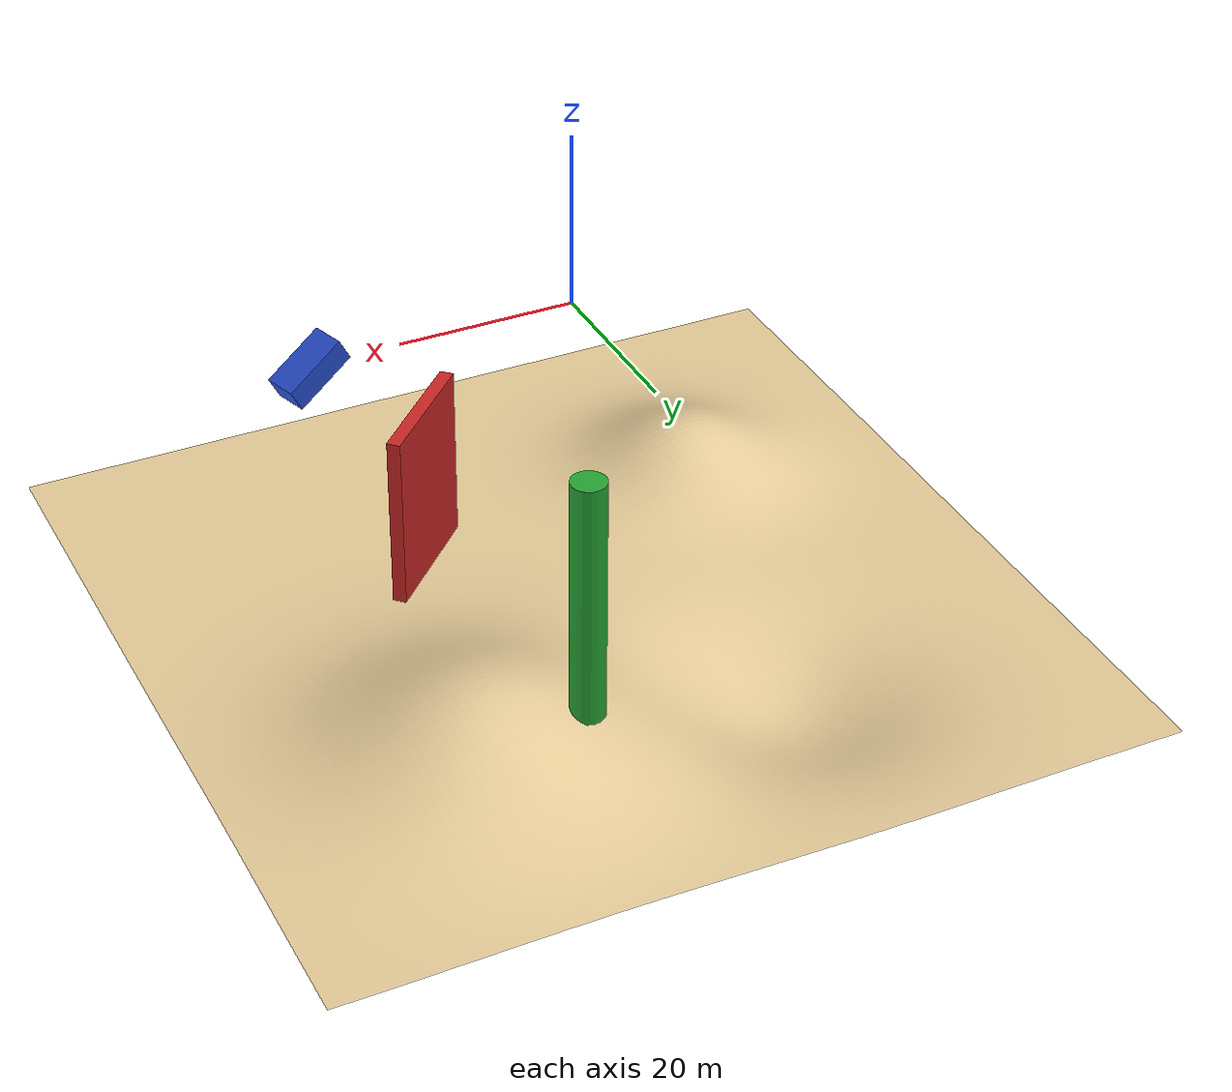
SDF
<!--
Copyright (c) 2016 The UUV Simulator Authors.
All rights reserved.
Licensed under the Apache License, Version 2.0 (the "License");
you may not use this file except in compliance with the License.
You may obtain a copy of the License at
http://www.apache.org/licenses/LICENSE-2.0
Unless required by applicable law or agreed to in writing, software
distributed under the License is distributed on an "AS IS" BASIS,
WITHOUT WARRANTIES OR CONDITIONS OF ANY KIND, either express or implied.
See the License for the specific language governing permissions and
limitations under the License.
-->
<sdf version="1.4">
 <world name="default">
  <physics name="default_physics" default="true" type="ode">
   <max_step_size>0.01</max_step_size>
   <real_time_factor>1</real_time_factor>
   <real_time_update_rate>100</real_time_update_rate>
   <ode><solver><type>quick</type><iters>50</iters><sor>1.2</sor></solver></ode>
  </physics>
  <scene>
   <ambient>0.01 0.01 0.01 1.0</ambient>
   <sky><clouds><speed>12</speed></clouds></sky>
   <shadows>1</shadows>
  </scene>
  <spherical_coordinates>
   <latitude_deg>63.435952</latitude_deg>
   <longitude_deg>10.357983</longitude_deg>
  </spherical_coordinates>
  <light type="directional" name="sun1">
   <pose>50 0 150 0 0 0</pose>
   <diffuse>1 1 1 1</diffuse>
   <specular>.1 .1 .1 1</specular>
   <direction>0.3 0.3 -1</direction>
   <cast_shadows>false</cast_shadows>
  </light>
  <light type="directional" name="sun_diffuse">
   <pose>-50 0 -150 0 0 0</pose>
   <diffuse>0.6 0.6 0.6 1</diffuse>
   <specular>0 0 0 1</specular>
   <direction>-0.3 -0.3 -1</direction>
   <cast_shadows>false</cast_shadows>
  </light>
  <model name="custom_seafloor">
   <static>true</static>
   <link name="link">
    <collision name="collision">
     <geometry>
      <mesh>
       <uri>file:///home/zw/master_ws/src/uuv_project_core/models/seafloor/custom_seafloor.stl</uri>
       <scale>1 1 1</scale>
      </mesh>
     </geometry>
     <surface><friction><ode><mu>100</mu><mu2>50</mu2></ode></friction></surface>
    </collision>
    <visual name="visual">
     <geometry>
      <mesh>
       <uri>file:///home/zw/master_ws/src/uuv_project_core/models/seafloor/custom_seafloor.stl</uri>
       <scale>1 1 1</scale>
      </mesh>
     </geometry>
     <material>
      <ambient>0.7 0.6 0.4 1</ambient>
      <diffuse>0.9 0.8 0.6 1</diffuse>
      <specular>0.2 0.2 0.2 1</specular>
      <emissive>0.1 0.08 0.05 1</emissive>
     </material>
    </visual>
   </link>
  </model>
  <model name="large_rotated_wall">
   <static>true</static>
   <pose>20 5 -15 0 0 0.785</pose>
   <link name="link">
    <collision name="collision"><geometry><box><size>15 1.5 20</size></box></geometry></collision>
    <visual name="visual">
     <geometry><box><size>15 1.5 20</size></box></geometry>
     <material>
      <script><uri>file://media/materials/scripts/gazebo.material</uri><name>Gazebo/Red</name></script>
     </material>
    </visual>
   </link>
  </model>
  <model name="vertical_pillar">
   <static>true</static>
   <pose>10 25 -20 0 0 0</pose>
   <link name="link">
    <collision name="collision">
     <geometry><cylinder><radius>2</radius><length>30</length></cylinder></geometry>
    </collision>
    <visual name="visual">
     <geometry><cylinder><radius>2</radius><length>30</length></cylinder></geometry>
     <material>
      <script><uri>file://media/materials/scripts/gazebo.material</uri><name>Gazebo/Green</name></script>
     </material>
    </visual>
   </link>
  </model>
  <model name="small_tilted_box">
   <static>true</static>
   <pose>25 -15 -10 0 0.5 0.3</pose>
   <link name="link">
    <collision name="collision"><geometry><box><size>8 4 3</size></box></geometry></collision>
    <visual name="visual">
     <geometry><box><size>8 4 3</size></box></geometry>
     <material>
      <script><uri>file://media/materials/scripts/gazebo.material</uri><name>Gazebo/Blue</name></script>
     </material>
    </visual>
   </link>
  </model>
  <plugin name="underwater_current_plugin" filename="libuuv_underwater_current_ros_plugin.so">
   <namespace>hydrodynamics</namespace>
   <constant_current>
    <topic>current_velocity</topic>
    <velocity><mean>0</mean><min>0</min><max>5</max><mu>0.0</mu><noiseAmp>0.0</noiseAmp></velocity>
    <horizontal_angle>
     <mean>0</mean>
     <min>-3.141592653589793238</min>
     <max>3.141592653589793238</max>
     <mu>0.0</mu>
     <noiseAmp>0.0</noiseAmp>
    </horizontal_angle>
    <vertical_angle>
     <mean>0</mean>
     <min>-3.141592653589793238</min>
     <max>3.141592653589793238</max>
     <mu>0.0</mu>
     <noiseAmp>0.0</noiseAmp>
    </vertical_angle>
   </constant_current>
  </plugin>
  <plugin name="sc_interface" filename="libuuv_sc_ros_interface_plugin.so"/>
 </world>
</sdf>
